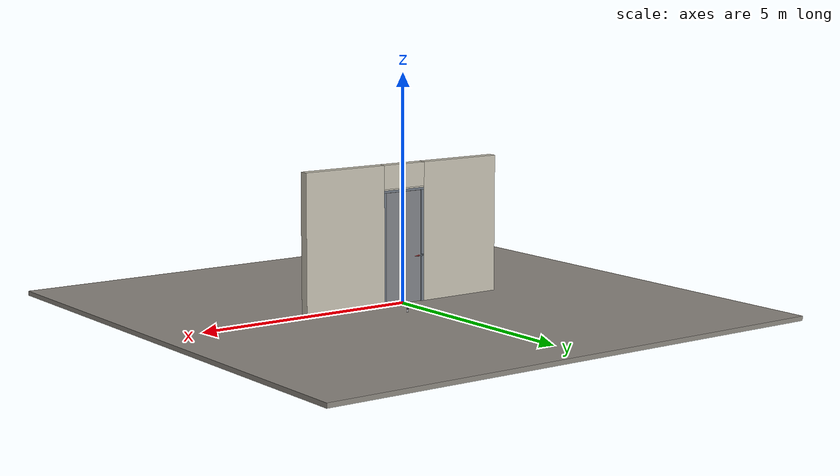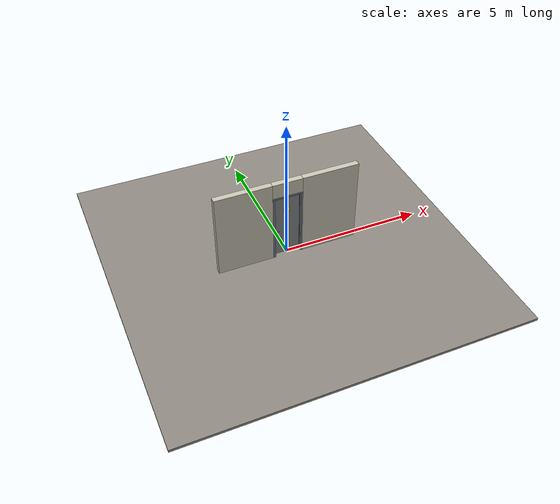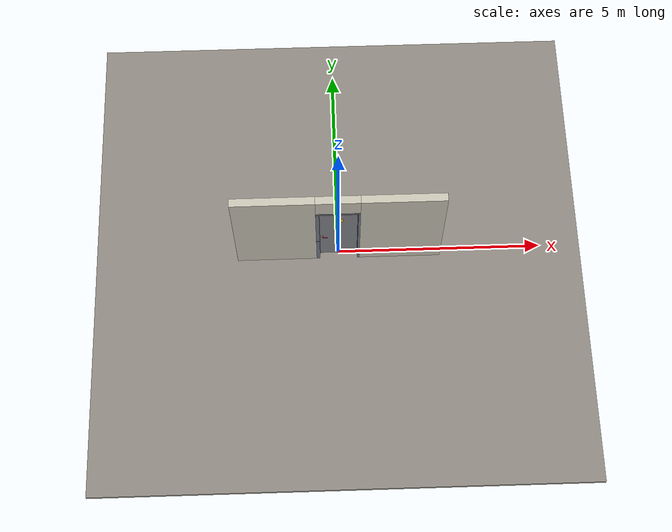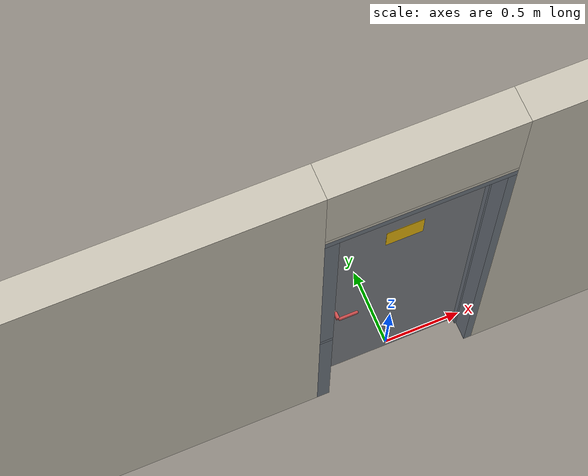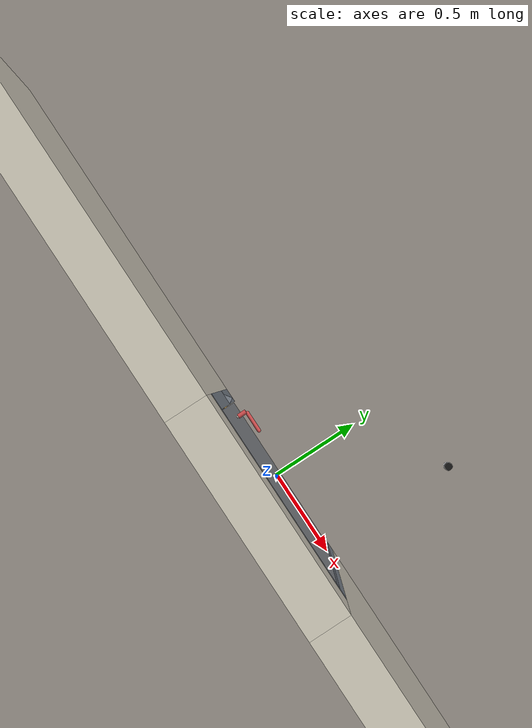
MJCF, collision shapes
<?xml version="1.0" ?>
<mujoco model="db0485_swing_single_full">
  <compiler angle="radian" meshdir="../../hardware" texturedir="../../textures" autolimits="true" inertiafromgeom="false"/>
  <option timestep="0.002" integrator="implicitfast" cone="elliptic" impratio="10" noslip_iterations="3">
    <flag multiccd="enable"/>
  </option>
  <size memory="16M"/>
  <default>
    <geom condim="4" solref="0.005 1" solimp="0.95 0.99 0.001"/>
    <joint solreflimit="0.005 1" solimplimit="0.95 0.99 0.001"/>
    <tendon solreflimit="0.005 1"/>
    <equality solref="0.002 1"/>
  </default>
  <visual>
    <headlight ambient="0.4 0.4 0.4" diffuse="0.7 0.7 0.7" specular="0.2 0.2 0.2"/>
    <quality shadowsize="4096"/>
    <map znear="0.01" zfar="60"/>
  </visual>
  <asset>
    <mesh name="hinge_e22b26c0c1" file="hinge_e22b26c0c1.obj"/>
    <mesh name="hinge_jamb_e1d088f8dc" file="hinge_jamb_e1d088f8dc.obj"/>
    <mesh name="lever_9f02b544cf" file="lever_9f02b544cf.obj"/>
    <material name="mat_floor" rgba="0.55 0.53 0.5 1" specular="0.2" shininess="0.15" reflectance="0"/>
    <material name="mat_wall" rgba="0.78 0.76 0.7 1" specular="0.2" shininess="0.1" reflectance="0"/>
    <material name="mat_leaf" rgba="0.5 0.51 0.53 1" specular="0.23" shininess="0.47" reflectance="0.02"/>
    <material name="mat_hinge" rgba="0.65 0.66 0.68 1" specular="0.74" shininess="0.5" reflectance="0.36"/>
    <material name="mat_op_nickel_satin" rgba="0.72 0.7 0.66 1" specular="0.8" shininess="0.65" reflectance="0.4"/>
    <material name="mat_trim" rgba="0.85 0.66 0.3 1" specular="0.8" shininess="0.75" reflectance="0.4"/>
    <material name="mat_bolt" rgba="0.85 0.66 0.3 1" specular="0.8" shininess="0.75" reflectance="0.4"/>
    <material name="mat_frame" rgba="0.45 0.48 0.52 1" specular="0.32" shininess="0.6" reflectance="0.08"/>
    <material name="mat_placard" rgba="0.95 0.75 0.05 1" specular="0.2" shininess="0.5" reflectance="0"/>
    <material name="mat_bumper_stop" rgba="0.08 0.08 0.08 1" specular="0.2" shininess="0.1" reflectance="0"/>
    <material name="mat_stop_base" rgba="0.9 0.9 0.92 1" specular="0.8" shininess="0.9" reflectance="0.4"/>
    <texture name="skybox" type="skybox" builtin="gradient" rgb1="0.6 0.7 0.85" rgb2="0.9 0.92 0.95" width="256" height="256"/>
  </asset>
  <worldbody>
    <light name="sun" pos="1.5 -2.5 4" dir="-0.3 0.5 -0.8" directional="true" diffuse="0.8 0.8 0.8" specular="0.3 0.3 0.3" castshadow="true"/>
    <light name="fill" pos="-1.5 2.5 3" dir="0.3 -0.5 -0.7" directional="true" diffuse="0.35 0.35 0.4" castshadow="false"/>
    <camera name="robot_view" pos="0 -2.993813 2.043887" xyaxes="1 0 0 0 0.26963 0.962964" fovy="52"/>
    <camera name="far_view" pos="0 2.851812 2.043887" xyaxes="-1 0 0 0 -0.26963 0.962964" fovy="52"/>
    <camera name="iso" pos="-2.221337 -2.526163 2.511538" xyaxes="0.741536 -0.670913 0 0.242917 0.268487 0.932151" fovy="46"/>
    <camera name="detail_handle" pos="-0.1065 -0.877 1.296" xyaxes="0.97561 0.219512 0 -0.070934 0.315262 0.94635" fovy="38"/>
    <geom name="floor" type="box" size="6 6 0.05" pos="0 0 -0.05" material="mat_floor" group="0" contype="1" conaffinity="1" friction="0.8 0.005 0.0001" density="2400"/>
    <geom name="wall_left" type="box" size="0.97975 0.1 1.5255" pos="-1.52025 -0.071 1.5255" material="mat_wall" group="0" contype="1" conaffinity="1" friction="0.6 0.005 0.0001" density="800"/>
    <geom name="wall_right" type="box" size="0.99475 0.1 1.5255" pos="1.50525 -0.071 1.5255" material="mat_wall" group="0" contype="1" conaffinity="1" friction="0.6 0.005 0.0001" density="800"/>
    <geom name="wall_header" type="box" size="0.5255 0.1 0.26" pos="-0.015 -0.071 2.791" material="mat_wall" group="0" contype="1" conaffinity="1" friction="0.6 0.005 0.0001" density="800"/>
    <geom name="hinge_0_jamb" type="mesh" mesh="hinge_jamb_e1d088f8dc" pos="0.4575 0.029 0.259" quat="0 0 0 1" material="mat_hinge" group="1" contype="0" conaffinity="0" density="7850"/>
    <geom name="hinge_1_jamb" type="mesh" mesh="hinge_jamb_e1d088f8dc" pos="0.4575 0.029 1.228" quat="0 0 0 1" material="mat_hinge" group="1" contype="0" conaffinity="0" density="7850"/>
    <geom name="hinge_2_jamb" type="mesh" mesh="hinge_jamb_e1d088f8dc" pos="0.4575 0.029 2.267" quat="0 0 0 1" material="mat_hinge" group="1" contype="0" conaffinity="0" density="7850"/>
    <geom name="jamb_hinge" type="box" size="0.025 0.1 1.2255" pos="0.4855 -0.071 1.2255" material="mat_frame" group="0" contype="1" conaffinity="1" friction="0.6 0.005 0.0001" density="300"/>
    <geom name="strike_1016_wall_n" type="box" size="0.04 0.08075 0.0183" pos="-0.5005 -0.09025 1.016" material="mat_frame" group="0" contype="1" conaffinity="1" friction="0.6 0.005 0.0001" density="300"/>
    <geom name="strike_1016_wall_p" type="box" size="0.04 0.008 0.0183" pos="-0.5005 0.0175 1.016" material="mat_frame" group="0" contype="1" conaffinity="1" friction="0.6 0.005 0.0001" density="300"/>
    <geom name="strike_1016_ramp" type="box" size="0.04 0.018028 0.0183" pos="-0.503782 0.018312 1.016" quat="0.957092 0 0 0.289784" material="mat_frame" group="0" contype="1" conaffinity="1" friction="0.12 0.005 0.0001" density="300"/>
    <geom name="strike_1016_back" type="box" size="0.0285 0.0095 0.0183" pos="-0.512 0 1.016" material="mat_frame" group="0" contype="1" conaffinity="1" friction="0.6 0.005 0.0001" density="300"/>
    <geom name="jamb_strike_0" type="box" size="0.04 0.1 0.49885" pos="-0.5005 -0.071 0.49885" material="mat_frame" group="0" contype="1" conaffinity="1" friction="0.6 0.005 0.0001" density="300"/>
    <geom name="jamb_strike_1" type="box" size="0.04 0.1 0.70835" pos="-0.5005 -0.071 1.74265" material="mat_frame" group="0" contype="1" conaffinity="1" friction="0.6 0.005 0.0001" density="300"/>
    <geom name="jamb_head" type="box" size="0.5255 0.1 0.025" pos="-0.015 -0.071 2.476" material="mat_frame" group="0" contype="1" conaffinity="1" friction="0.6 0.005 0.0001" density="300"/>
    <geom name="head_stud" type="box" size="0.5255 0.1 0.015" pos="-0.015 -0.071 2.516" material="mat_wall" group="0" contype="1" conaffinity="1" friction="0.6 0.005 0.0001" density="500"/>
    <geom name="stop_hinge" type="box" size="0.0055 0.016 1.2255" pos="0.455 -0.0385 1.2255" material="mat_frame" group="0" contype="1" conaffinity="1" friction="0.6 0.005 0.0001" density="300"/>
    <geom name="stop_strike" type="box" size="0.0055 0.016 1.2255" pos="-0.455 -0.0385 1.2255" material="mat_frame" group="0" contype="1" conaffinity="1" friction="0.6 0.005 0.0001" density="300"/>
    <geom name="stop_head" type="box" size="0.4605 0.016 0.0055" pos="0 -0.0385 2.4455" material="mat_frame" group="0" contype="1" conaffinity="1" friction="0.6 0.005 0.0001" density="300"/>
    <geom name="door_stop_base" type="cylinder" size="0.022 0.003" pos="0.4735 0.8059 0.003" material="mat_stop_base" group="0" contype="1" conaffinity="1" friction="0.6 0.005 0.0001" density="7850"/>
    <geom name="door_stop_post" type="cylinder" size="0.012 0.0245" pos="0.4735 0.8059 0.0305" material="mat_stop_base" group="0" contype="1" conaffinity="1" friction="0.6 0.005 0.0001" density="7850"/>
    <geom name="door_stop_bumper" type="cylinder" size="0.022 0.02" pos="0.4735 0.8059 0.075" material="mat_bumper_stop" group="0" contype="1" conaffinity="1" friction="0.6 0.005 0.0001" density="1100"/>
    <site name="approach_point" pos="0 -1.5 0" quat="1 0 0 0" size="0.05" rgba="0.2 0.9 0.2 0.5" group="4"/>
    <site name="goal_point" pos="0 1.5 0" quat="1 0 0 0" size="0.05" rgba="0.2 0.9 0.2 0.5" group="4"/>
    <site name="door_plane_center" pos="0 0 1.2255" quat="1 0 0 0" size="0.02" rgba="0.2 0.9 0.2 0.5" group="4"/>
    <body name="leaf" pos="0.4605 0 0">
      <inertial pos="-0.454203 0.000203 1.22901" mass="56.128299" quat="0.499719 0.500469 -0.499543 0.500268" diaginertia="4.014204179 27.924672525 31.920159465"/>
      <joint name="leaf_hinge" type="hinge" axis="0 0 -1" pos="-0.003 0.029 0" limited="true" range="0 1.570796" damping="2.307281" frictionloss="2.306359" stiffness="6.6" springref="-0.454283" armature="0.02"/>
      <geom name="leaf_slab" type="box" size="0.457 0.022 1.219" pos="-0.46 0 1.228" material="mat_leaf" group="0" contype="1" conaffinity="1" friction="0.42 0.005 0.0001" density="1"/>
      <geom name="hinge_0" type="mesh" mesh="hinge_e22b26c0c1" pos="-0.003 0.029 0.259" quat="0 0 0 1" material="mat_hinge" group="1" contype="0" conaffinity="0" density="7850"/>
      <geom name="hinge_1" type="mesh" mesh="hinge_e22b26c0c1" pos="-0.003 0.029 1.228" quat="0 0 0 1" material="mat_hinge" group="1" contype="0" conaffinity="0" density="7850"/>
      <geom name="hinge_2" type="mesh" mesh="hinge_e22b26c0c1" pos="-0.003 0.029 2.267" quat="0 0 0 1" material="mat_hinge" group="1" contype="0" conaffinity="0" density="7850"/>
      <geom name="leaf_latch_bolt_faceplate" type="box" size="0.0006 0.014 0.0283" pos="-0.9164 0 1.016" material="mat_bolt" group="1" contype="0" conaffinity="0" density="8500"/>
      <geom name="warning_placard" type="box" size="0.11 0.001 0.08" pos="-0.46 -0.023 1.8375" material="mat_placard" group="2" contype="0" conaffinity="0" density="1000"/>
      <site name="leaf_edge_mid" pos="-0.917 0 1.219" quat="1 0 0 0" size="0.02" rgba="0.2 0.9 0.2 0.5" group="4"/>
      <body name="leaf_handle" pos="-0.847 0 1.016">
        <inertial pos="0.028544 0 0" mass="0.978187" quat="0 0.707107 0.707107 0" diaginertia="0.001772047 0.003604455 0.005198299"/>
        <joint name="leaf_handle_hinge" type="hinge" axis="0 1 0" limited="true" range="0 0.96" damping="0.245624" frictionloss="0.048" stiffness="1.2" springref="-0.458333" armature="0.01"/>
        <geom name="leaf_handle_spindle" type="cylinder" size="0.006 0.03" pos="0 0 0" quat="0.707107 -0.707107 0 0" material="mat_op_nickel_satin" group="1" contype="0" conaffinity="0" density="7850"/>
        <geom name="leaf_handle_lever_n" type="mesh" mesh="lever_9f02b544cf" pos="0 -0.022 0" quat="0 0 -0.707107 0.707107" material="mat_op_nickel_satin" group="1" contype="0" conaffinity="0" density="3000"/>
        <geom name="leaf_handle_lever_col_n" type="capsule" size="0.0095 0.053" pos="0.0625 -0.077 0" quat="0.707107 0 0.707107 0" material="mat_op_nickel_satin" group="3" contype="1" conaffinity="1" rgba="0.8 0.3 0.3 0.25" friction="0.7 0.01 0.0001" density="3000"/>
        <geom name="leaf_handle_hub_col_n" type="cylinder" size="0.012 0.022" pos="0 -0.052 0" quat="0.707107 -0.707107 0 0" material="mat_op_nickel_satin" group="3" contype="1" conaffinity="1" rgba="0.8 0.3 0.3 0.25" friction="0.6 0.005 0.0001" density="3000"/>
        <geom name="leaf_handle_lever_p" type="mesh" mesh="lever_9f02b544cf" pos="0 0.022 0" quat="0 0 0.707107 0.707107" material="mat_op_nickel_satin" group="1" contype="0" conaffinity="0" density="3000"/>
        <geom name="leaf_handle_lever_col_p" type="capsule" size="0.0095 0.053" pos="0.0625 0.077 0" quat="0.707107 0 0.707107 0" material="mat_op_nickel_satin" group="3" contype="1" conaffinity="1" rgba="0.8 0.3 0.3 0.25" friction="0.7 0.01 0.0001" density="3000"/>
        <geom name="leaf_handle_hub_col_p" type="cylinder" size="0.012 0.022" pos="0 0.052 0" quat="0.707107 -0.707107 0 0" material="mat_op_nickel_satin" group="3" contype="1" conaffinity="1" rgba="0.8 0.3 0.3 0.25" friction="0.6 0.005 0.0001" density="3000"/>
        <site name="leaf_handle_grip_n" pos="0.1 -0.077 0" quat="1 0 0 0" size="0.012" rgba="0.2 0.9 0.2 0.5" group="4"/>
        <site name="leaf_handle_grip_p" pos="0.1 0.077 0" quat="1 0 0 0" size="0.012" rgba="0.2 0.9 0.2 0.5" group="4"/>
      </body>
      <body name="leaf_latch_bolt" pos="-0.917 0 1.016">
        <inertial pos="0.0055 0 0" mass="0.074627" quat="0.92388 0.382683 0 0" diaginertia="0.000002271 0.000013255 0.000013255"/>
        <joint name="leaf_latch_bolt_slide" type="slide" axis="1 0 0" limited="true" range="0 0.019" damping="2" frictionloss="0.3" stiffness="600" springref="-0.01" armature="0.1"/>
        <geom name="leaf_latch_bolt_capsule" type="capsule" size="0.008 0.0165" pos="0.0055 0 0" quat="0.707107 0 -0.707107 0" material="mat_bolt" group="0" contype="1" conaffinity="1" friction="0.2 0.005 0.0001" density="8500"/>
      </body>
    </body>
  </worldbody>
  <tendon>
    <fixed name="leaf_latch_bolt_coupling" limited="true" range="0 10">
      <joint joint="leaf_latch_bolt_slide" coef="1"/>
      <joint joint="leaf_handle_hinge" coef="-0.020879"/>
    </fixed>
  </tendon>
  <sensor>
    <jointpos name="leaf_hinge_pos" joint="leaf_hinge"/>
    <jointvel name="leaf_hinge_vel" joint="leaf_hinge"/>
    <jointpos name="leaf_handle_hinge_pos" joint="leaf_handle_hinge"/>
    <jointvel name="leaf_handle_hinge_vel" joint="leaf_handle_hinge"/>
    <jointpos name="leaf_latch_bolt_slide_pos" joint="leaf_latch_bolt_slide"/>
    <jointvel name="leaf_latch_bolt_slide_vel" joint="leaf_latch_bolt_slide"/>
  </sensor>
</mujoco>
